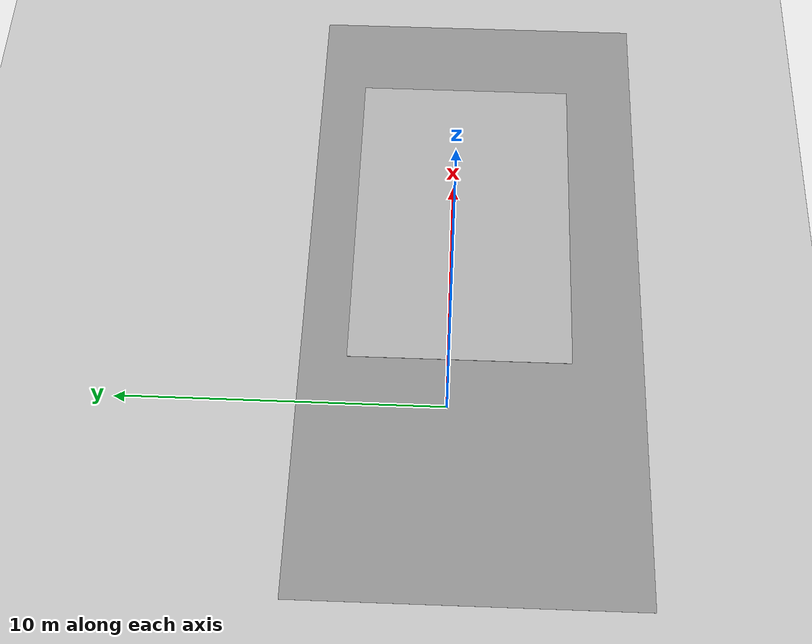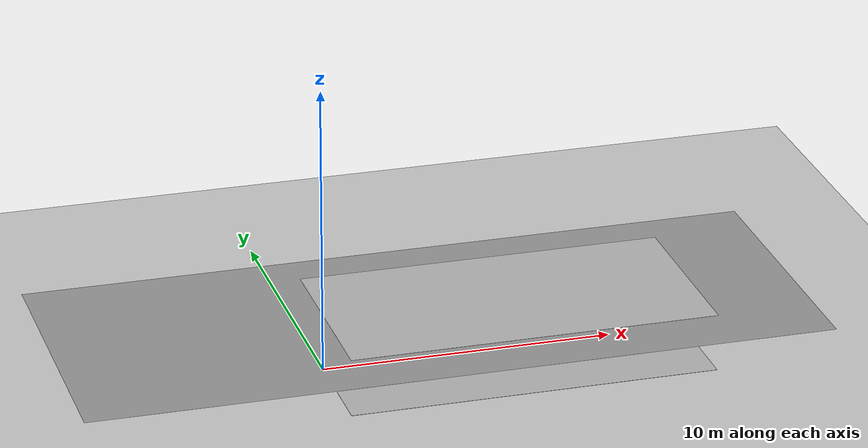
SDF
<sdf version="1.7">
 <world name="default">
  <light name="sun" type="directional">
   <pose>0 0 10 0 -0 0</pose>
   <diffuse>0.8 0.8 0.8 1</diffuse>
   <specular>0.2 0.2 0.2 1</specular>
   <attenuation>
    <range>1000</range>
    <constant>0.9</constant>
    <linear>0.01</linear>
    <quadratic>0.001</quadratic>
   </attenuation>
   <direction>-0.5 0.1 -0.9</direction>
   <spot><inner_angle>0</inner_angle><outer_angle>0</outer_angle><falloff>0</falloff></spot>
  </light>
  <model name="ground_plane">
   <static>1</static>
   <link name="link">
    <collision name="collision">
     <geometry><plane><normal>0 0 1</normal><size>100 100</size></plane></geometry>
     <surface><friction><ode><mu>100</mu><mu2>50</mu2></ode></friction></surface>
    </collision>
    <visual name="visual">
     <cast_shadows>0</cast_shadows>
     <geometry><plane><normal>0 0 1</normal><size>100 100</size></plane></geometry>
     <material>
      <script><uri>file://media/materials/scripts/gazebo.material</uri><name>Gazebo/Grey</name></script>
     </material>
    </visual>
   </link>
  </model>
  <gravity>0 0 -9.8</gravity>
  <magnetic_field>6e-06 2.3e-05 -4.2e-05</magnetic_field>
  <atmosphere type="adiabatic"/>
  <physics type="ode">
   <max_step_size>0.001</max_step_size>
   <real_time_factor>1</real_time_factor>
   <real_time_update_rate>1000</real_time_update_rate>
  </physics>
  <scene><ambient>0.4 0.4 0.4 1</ambient><background>0.7 0.7 0.7 1</background><shadows>1</shadows></scene>
  <spherical_coordinates>
   <surface_model>EARTH_WGS84</surface_model>
   <latitude_deg>0</latitude_deg>
   <longitude_deg>0</longitude_deg>
   <elevation>0</elevation>
   <heading_deg>0</heading_deg>
  </spherical_coordinates>
  <model name="sb_map_new">
   <pose>6.315 -0.31 0 0 -0 0</pose>
   <link name="link">
    <visual name="visual">
     <geometry><box><size>12.63 6.62 0.01</size></box></geometry>
     <material>
      <script><uri>model://sb_map_new/materials/sb_map_new.material</uri><name>sb_map_new</name></script>
     </material>
    </visual>
   </link>
   <static>1</static>
  </model>
  <model name="oregatukutta_1.5_hige">
   <pose>6.315 -0.31 1 0 -0 0</pose>
   <link name="link">
    <visual name="visual">
     <geometry><box><size>12.63 6.62 0.01</size></box></geometry>
     <material>
      <script>
       <uri>model://oregatukutta_1.5_hige/materials/oregatukutta_1.5_hige.material</uri>
       <name>oregatukutta_1.5_hige</name>
      </script>
     </material>
    </visual>
   </link>
   <static>1</static>
  </model>
  <model name="after_set_covering_route1_tougou">
   <pose>6.315 -0.31 2 0 -0 0</pose>
   <link name="link">
    <visual name="visual">
     <geometry><box><size>12.63 6.62 0.01</size></box></geometry>
     <material>
      <script>
       <uri>model://after_set_covering_route1_tougou/materials/after_set_covering_route1_tougou.material</uri>
       <name>after_set_covering_route1_tougou</name>
      </script>
     </material>
    </visual>
   </link>
   <static>1</static>
  </model>
  <model name="fixed_plate">
   <static>1</static>
   <pose>3.36404 -0.663728 2 0 -0 0</pose>
   <link name="link">
    <collision name="collision"><geometry><box><size>25.2974 10.0696 0.001</size></box></geometry></collision>
    <visual name="visual">
     <geometry><box><size>25.2974 10.0696 0.001</size></box></geometry>
     <material>
      <script><uri>file://media/materials/scripts/gazebo.material</uri><name>Gazebo/Grey</name></script>
     </material>
    </visual>
   </link>
  </model>
 </world>
</sdf>
